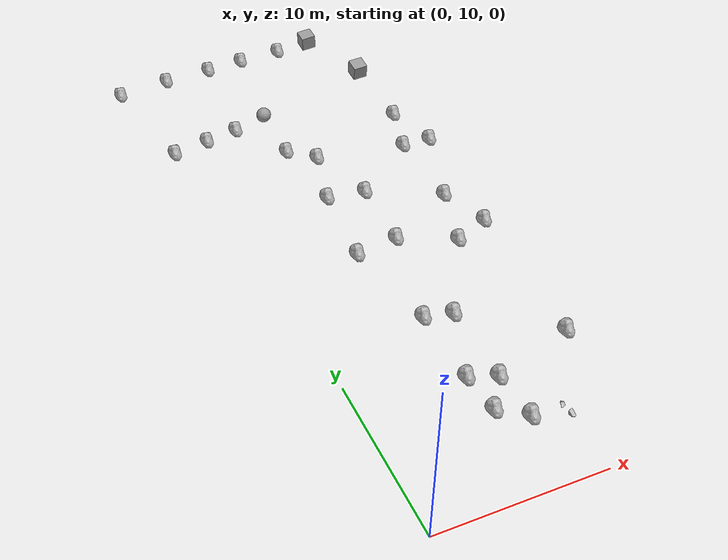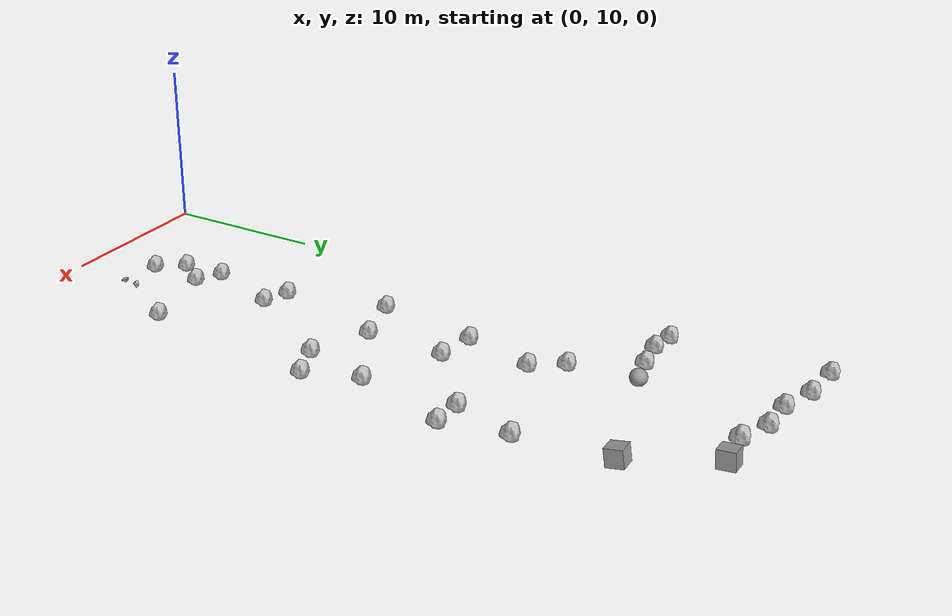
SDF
<sdf version="1.6">
 <world name="default">
  <physics name="default_physics" default="0" type="ode">
   <max_step_size>0.001</max_step_size>
   <real_time_factor>1</real_time_factor>
   <real_time_update_rate>1000</real_time_update_rate>
  </physics>
  <scene>
   <ambient>0 0 0 1</ambient>
   <background>0 0 0 1</background>
   <grid>0</grid>
   <sky><time>13</time><sunrise>12</sunrise><sunset>12</sunset><clouds><humidity>0</humidity></clouds></sky>
   <shadows>1</shadows>
  </scene>
  <light name="sun" type="directional">
   <pose>0 0 12 -0.31 0.39 -1.73</pose>
   <diffuse>0.8 0.8 0.8 1</diffuse>
   <specular>0.5 0.5 0.5 1</specular>
   <attenuation>
    <range>1000</range>
    <constant>0.9</constant>
    <linear>0.01</linear>
    <quadratic>0.001</quadratic>
   </attenuation>
   <direction>-0.5 0.1 -0.4</direction>
  </light>
  <light name="sun7" type="directional">
   <pose>-1 -1 10 0 -0 0</pose>
   <diffuse>0.9 0.9 0.9 1</diffuse>
   <specular>0.5 0.5 0.5 1</specular>
   <attenuation><range>100</range><constant>1</constant></attenuation>
   <direction>-1 1 -1</direction>
  </light>
  <gravity>0 0 -9.8</gravity>
  <magnetic_field>6e-06 2.3e-05 -4.2e-05</magnetic_field>
  <atmosphere type="adiabatic"/>
  <spherical_coordinates>
   <surface_model>EARTH_WGS84</surface_model>
   <latitude_deg>0</latitude_deg>
   <longitude_deg>0</longitude_deg>
   <elevation>0</elevation>
   <heading_deg>0</heading_deg>
  </spherical_coordinates>
  <model name="stone1">
   <pose>12.9206 18.4882 0 0 -0 0</pose>
   <static>1</static>
   <link name="stone1_link">
    <collision name="stone1_collision">
     <geometry><mesh><uri>model://stone1/meshes/s1.dae</uri><scale>1 1 1</scale></mesh></geometry>
    </collision>
    <visual name="stone1_visual">
     <geometry><mesh><uri>model://stone1/meshes/s1.dae</uri><scale>1 1 1</scale></mesh></geometry>
     <material><shader type="pixel"><normal_map>__default__</normal_map></shader><lighting>0</lighting></material>
    </visual>
   </link>
  </model>
  <model name="stone1_0">
   <pose>13.6667 29.0145 -0.436939 0 -0 0</pose>
   <static>1</static>
   <link name="stone1_link">
    <collision name="stone1_collision">
     <geometry><mesh><uri>model://stone1/meshes/s1.dae</uri><scale>1 1 1</scale></mesh></geometry>
    </collision>
    <visual name="stone1_visual">
     <geometry><mesh><uri>model://stone1/meshes/s1.dae</uri><scale>1 1 1</scale></mesh></geometry>
     <material><shader type="pixel"><normal_map>__default__</normal_map></shader><lighting>0</lighting></material>
    </visual>
   </link>
  </model>
  <model name="stone1_1">
   <pose>12.5622 32.2313 -0.440519 0 -0 0</pose>
   <static>1</static>
   <link name="stone1_link">
    <collision name="stone1_collision">
     <geometry><mesh><uri>model://stone1/meshes/s1.dae</uri><scale>1 1 1</scale></mesh></geometry>
    </collision>
    <visual name="stone1_visual">
     <geometry><mesh><uri>model://stone1/meshes/s1.dae</uri><scale>1 1 1</scale></mesh></geometry>
     <material><shader type="pixel"><normal_map>__default__</normal_map></shader><lighting>0</lighting></material>
    </visual>
   </link>
  </model>
  <model name="stone1_2">
   <pose>11.3753 28.0758 -0.497412 0 -0 0</pose>
   <static>1</static>
   <link name="stone1_link">
    <collision name="stone1_collision">
     <geometry><mesh><uri>model://stone1/meshes/s1.dae</uri><scale>1 1 1</scale></mesh></geometry>
    </collision>
    <visual name="stone1_visual">
     <geometry><mesh><uri>model://stone1/meshes/s1.dae</uri><scale>1 1 1</scale></mesh></geometry>
     <material><shader type="pixel"><normal_map>__default__</normal_map></shader><lighting>0</lighting></material>
    </visual>
   </link>
  </model>
  <model name="stone1_3">
   <pose>7.96425 13.9227 0 0 -0 0</pose>
   <static>1</static>
   <link name="stone1_link">
    <collision name="stone1_collision">
     <geometry><mesh><uri>model://stone1/meshes/s1.dae</uri><scale>1 1 1</scale></mesh></geometry>
    </collision>
    <visual name="stone1_visual">
     <geometry><mesh><uri>model://stone1/meshes/s1.dae</uri><scale>1 1 1</scale></mesh></geometry>
     <material><shader type="pixel"><normal_map>__default__</normal_map></shader><lighting>0</lighting></material>
    </visual>
   </link>
  </model>
  <model name="stone1_4">
   <pose>7.89981 17.0803 -0.180901 0 -0 0</pose>
   <static>1</static>
   <link name="stone1_link">
    <collision name="stone1_collision">
     <geometry><mesh><uri>model://stone1/meshes/s1.dae</uri><scale>1 1 1</scale></mesh></geometry>
    </collision>
    <visual name="stone1_visual">
     <geometry><mesh><uri>model://stone1/meshes/s1.dae</uri><scale>1 1 1</scale></mesh></geometry>
     <material><shader type="pixel"><normal_map>__default__</normal_map></shader><lighting>0</lighting></material>
    </visual>
   </link>
  </model>
  <model name="stone1_5">
   <pose>6.31821 17.7982 -0.279202 0 -0 0</pose>
   <static>1</static>
   <link name="stone1_link">
    <collision name="stone1_collision">
     <geometry><mesh><uri>model://stone1/meshes/s1.dae</uri><scale>1 1 1</scale></mesh></geometry>
    </collision>
    <visual name="stone1_visual">
     <geometry><mesh><uri>model://stone1/meshes/s1.dae</uri><scale>1 1 1</scale></mesh></geometry>
     <material><shader type="pixel"><normal_map>__default__</normal_map></shader><lighting>0</lighting></material>
    </visual>
   </link>
  </model>
  <model name="stone1_6">
   <pose>6.53041 15.2027 -0.219735 0 -0 0</pose>
   <static>1</static>
   <link name="stone1_link">
    <collision name="stone1_collision">
     <geometry><mesh><uri>model://stone1/meshes/s1.dae</uri><scale>1 1 1</scale></mesh></geometry>
    </collision>
    <visual name="stone1_visual">
     <geometry><mesh><uri>model://stone1/meshes/s1.dae</uri><scale>1 1 1</scale></mesh></geometry>
     <material><shader type="pixel"><normal_map>__default__</normal_map></shader><lighting>0</lighting></material>
    </visual>
   </link>
  </model>
  <model name="stone1_7">
   <pose>6.29324 22.8087 -0.362838 0 -0 0</pose>
   <static>1</static>
   <link name="stone1_link">
    <collision name="stone1_collision">
     <geometry><mesh><uri>model://stone1/meshes/s1.dae</uri><scale>1 1 1</scale></mesh></geometry>
    </collision>
    <visual name="stone1_visual">
     <geometry><mesh><uri>model://stone1/meshes/s1.dae</uri><scale>1 1 1</scale></mesh></geometry>
     <material><shader type="pixel"><normal_map>__default__</normal_map></shader><lighting>0</lighting></material>
    </visual>
   </link>
  </model>
  <model name="stone1_8">
   <pose>5.05039 29.05 -0.271286 0 -0 0</pose>
   <static>1</static>
   <link name="stone1_link">
    <collision name="stone1_collision">
     <geometry><mesh><uri>model://stone1/meshes/s1.dae</uri><scale>1 1 1</scale></mesh></geometry>
    </collision>
    <visual name="stone1_visual">
     <geometry><mesh><uri>model://stone1/meshes/s1.dae</uri><scale>1 1 1</scale></mesh></geometry>
     <material><shader type="pixel"><normal_map>__default__</normal_map></shader><lighting>0</lighting></material>
    </visual>
   </link>
  </model>
  <model name="stone1_9">
   <pose>7.93451 29.6751 -0.490421 0 -0 0</pose>
   <static>1</static>
   <link name="stone1_link">
    <collision name="stone1_collision">
     <geometry><mesh><uri>model://stone1/meshes/s1.dae</uri><scale>1 1 1</scale></mesh></geometry>
    </collision>
    <visual name="stone1_visual">
     <geometry><mesh><uri>model://stone1/meshes/s1.dae</uri><scale>1 1 1</scale></mesh></geometry>
     <material><shader type="pixel"><normal_map>__default__</normal_map></shader><lighting>0</lighting></material>
    </visual>
   </link>
  </model>
  <model name="stone1_10">
   <pose>7.96545 22.314 -0.275168 0 -0 0</pose>
   <static>1</static>
   <link name="stone1_link">
    <collision name="stone1_collision">
     <geometry><mesh><uri>model://stone1/meshes/s1.dae</uri><scale>1 1 1</scale></mesh></geometry>
    </collision>
    <visual name="stone1_visual">
     <geometry><mesh><uri>model://stone1/meshes/s1.dae</uri><scale>1 1 1</scale></mesh></geometry>
     <material><shader type="pixel"><normal_map>__default__</normal_map></shader><lighting>0</lighting></material>
    </visual>
   </link>
  </model>
  <model name="stone1_11">
   <pose>5.63715 34.9447 -0.506085 0 -0 0</pose>
   <static>1</static>
   <link name="stone1_link">
    <collision name="stone1_collision">
     <geometry><mesh><uri>model://stone1/meshes/s1.dae</uri><scale>1 1 1</scale></mesh></geometry>
    </collision>
    <visual name="stone1_visual">
     <geometry><mesh><uri>model://stone1/meshes/s1.dae</uri><scale>1 1 1</scale></mesh></geometry>
     <material><shader type="pixel"><normal_map>__default__</normal_map></shader><lighting>0</lighting></material>
    </visual>
   </link>
  </model>
  <model name="stone1_12">
   <pose>8.08632 34.5392 -0.474132 0 -0 0</pose>
   <static>1</static>
   <link name="stone1_link">
    <collision name="stone1_collision">
     <geometry><mesh><uri>model://stone1/meshes/s1.dae</uri><scale>1 1 1</scale></mesh></geometry>
    </collision>
    <visual name="stone1_visual">
     <geometry><mesh><uri>model://stone1/meshes/s1.dae</uri><scale>1 1 1</scale></mesh></geometry>
     <material><shader type="pixel"><normal_map>__default__</normal_map></shader><lighting>0</lighting></material>
    </visual>
   </link>
  </model>
  <model name="stone1_13">
   <pose>14.396 37.9045 -0.379532 0 -0 0</pose>
   <static>1</static>
   <link name="stone1_link">
    <collision name="stone1_collision">
     <geometry><mesh><uri>model://stone1/meshes/s1.dae</uri><scale>1 1 1</scale></mesh></geometry>
    </collision>
    <visual name="stone1_visual">
     <geometry><mesh><uri>model://stone1/meshes/s1.dae</uri><scale>1 1 1</scale></mesh></geometry>
     <material><shader type="pixel"><normal_map>__default__</normal_map></shader><lighting>0</lighting></material>
    </visual>
   </link>
  </model>
  <model name="stone1_14">
   <pose>12.4861 37.9806 -0.406533 0 -0 0</pose>
   <static>1</static>
   <link name="stone1_link">
    <collision name="stone1_collision">
     <geometry><mesh><uri>model://stone1/meshes/s1.dae</uri><scale>1 1 1</scale></mesh></geometry>
    </collision>
    <visual name="stone1_visual">
     <geometry><mesh><uri>model://stone1/meshes/s1.dae</uri><scale>1 1 1</scale></mesh></geometry>
     <material><shader type="pixel"><normal_map>__default__</normal_map></shader><lighting>0</lighting></material>
    </visual>
   </link>
  </model>
  <model name="stone1_15">
   <pose>6.70023 39.1269 -0.537971 0 -0 0</pose>
   <static>1</static>
   <link name="stone1_link">
    <collision name="stone1_collision">
     <geometry><mesh><uri>model://stone1/meshes/s1.dae</uri><scale>1 1 1</scale></mesh></geometry>
    </collision>
    <visual name="stone1_visual">
     <geometry><mesh><uri>model://stone1/meshes/s1.dae</uri><scale>1 1 1</scale></mesh></geometry>
     <material><shader type="pixel"><normal_map>__default__</normal_map></shader><lighting>0</lighting></material>
    </visual>
   </link>
  </model>
  <model name="stone1_16">
   <pose>13.4977 41.5845 -0.474996 0 -0 0</pose>
   <static>1</static>
   <link name="stone1_link">
    <collision name="stone1_collision">
     <geometry><mesh><uri>model://stone1/meshes/s1.dae</uri><scale>1 1 1</scale></mesh></geometry>
    </collision>
    <visual name="stone1_visual">
     <geometry><mesh><uri>model://stone1/meshes/s1.dae</uri><scale>1 1 1</scale></mesh></geometry>
     <material><shader type="pixel"><normal_map>__default__</normal_map></shader><lighting>0</lighting></material>
    </visual>
   </link>
  </model>
  <model name="stone1_17">
   <pose>5.18283 40.8011 -0.733293 0 -0 0</pose>
   <static>1</static>
   <link name="stone1_link">
    <collision name="stone1_collision">
     <geometry><mesh><uri>model://stone1/meshes/s1.dae</uri><scale>1 1 1</scale></mesh></geometry>
    </collision>
    <visual name="stone1_visual">
     <geometry><mesh><uri>model://stone1/meshes/s1.dae</uri><scale>1 1 1</scale></mesh></geometry>
     <material><shader type="pixel"><normal_map>__default__</normal_map></shader><lighting>0</lighting></material>
    </visual>
   </link>
  </model>
  <model name="unit_sphere_0">
   <pose>5.23158 45.3515 -0.112712 0 -0 0</pose>
   <link name="link">
    <inertial>
     <mass>1</mass>
     <inertia><ixx>0.1</ixx><ixy>0</ixy><ixz>0</ixz><iyy>0.1</iyy><iyz>0</iyz><izz>0.1</izz></inertia>
    </inertial>
    <collision name="collision"><geometry><sphere><radius>0.5</radius></sphere></geometry></collision>
    <visual name="visual">
     <geometry><sphere><radius>0.5</radius></sphere></geometry>
     <material>
      <script><name>Gazebo/Grey</name><uri>file://media/materials/scripts/gazebo.material</uri></script>
     </material>
    </visual>
   </link>
  </model>
  <model name="unit_box_0">
   <pose>13.3696 47.5586 0.319321 0.179607 -0.050335 0.029828</pose>
   <link name="link">
    <inertial>
     <mass>1</mass>
     <inertia>
      <ixx>0.166667</ixx>
      <ixy>0</ixy>
      <ixz>0</ixz>
      <iyy>0.166667</iyy>
      <iyz>0</iyz>
      <izz>0.166667</izz>
     </inertia>
    </inertial>
    <collision name="collision"><geometry><box><size>1 1 1</size></box></geometry></collision>
    <visual name="visual">
     <geometry><box><size>1 1 1</size></box></geometry>
     <material>
      <script><name>Gazebo/Grey</name><uri>file://media/materials/scripts/gazebo.material</uri></script>
     </material>
    </visual>
   </link>
  </model>
  <model name="unit_box_1">
   <pose>11.3203 52.3067 0.601739 0.094816 -0.095626 0.001978</pose>
   <link name="link">
    <inertial>
     <mass>1</mass>
     <inertia>
      <ixx>0.166667</ixx>
      <ixy>0</ixy>
      <ixz>0</ixz>
      <iyy>0.166667</iyy>
      <iyz>0</iyz>
      <izz>0.166667</izz>
     </inertia>
    </inertial>
    <collision name="collision"><geometry><box><size>1 1 1</size></box></geometry></collision>
    <visual name="visual">
     <geometry><box><size>1 1 1</size></box></geometry>
     <material>
      <script><name>Gazebo/Grey</name><uri>file://media/materials/scripts/gazebo.material</uri></script>
     </material>
    </visual>
   </link>
  </model>
  <model name="stone1_18">
   <pose>8.82122 51.6883 0 0 -0 0</pose>
   <static>1</static>
   <link name="stone1_link">
    <collision name="stone1_collision">
     <geometry><mesh><uri>model://stone1/meshes/s1.dae</uri><scale>1 1 1</scale></mesh></geometry>
    </collision>
    <visual name="stone1_visual">
     <geometry><mesh><uri>model://stone1/meshes/s1.dae</uri><scale>1 1 1</scale></mesh></geometry>
     <material><shader type="pixel"><normal_map>__default__</normal_map></shader><lighting>0</lighting></material>
    </visual>
   </link>
  </model>
  <model name="stone1_19">
   <pose>6.12242 52.3073 -0.530115 0 -0 0</pose>
   <static>1</static>
   <link name="stone1_link">
    <collision name="stone1_collision">
     <geometry><mesh><uri>model://stone1/meshes/s1.dae</uri><scale>1 1 1</scale></mesh></geometry>
    </collision>
    <visual name="stone1_visual">
     <geometry><mesh><uri>model://stone1/meshes/s1.dae</uri><scale>1 1 1</scale></mesh></geometry>
     <material><shader type="pixel"><normal_map>__default__</normal_map></shader><lighting>0</lighting></material>
    </visual>
   </link>
  </model>
  <model name="stone1_20">
   <pose>2.88531 44.4376 -0.728864 0 -0 0</pose>
   <static>1</static>
   <link name="stone1_link">
    <collision name="stone1_collision">
     <geometry><mesh><uri>model://stone1/meshes/s1.dae</uri><scale>1 1 1</scale></mesh></geometry>
    </collision>
    <visual name="stone1_visual">
     <geometry><mesh><uri>model://stone1/meshes/s1.dae</uri><scale>1 1 1</scale></mesh></geometry>
     <material><shader type="pixel"><normal_map>__default__</normal_map></shader><lighting>0</lighting></material>
    </visual>
   </link>
  </model>
  <model name="stone1_21">
   <pose>0.711754 44.1397 -0.833818 0 -0 0</pose>
   <static>1</static>
   <link name="stone1_link">
    <collision name="stone1_collision">
     <geometry><mesh><uri>model://stone1/meshes/s1.dae</uri><scale>1 1 1</scale></mesh></geometry>
    </collision>
    <visual name="stone1_visual">
     <geometry><mesh><uri>model://stone1/meshes/s1.dae</uri><scale>1 1 1</scale></mesh></geometry>
     <material><shader type="pixel"><normal_map>__default__</normal_map></shader><lighting>0</lighting></material>
    </visual>
   </link>
  </model>
  <model name="stone1_22">
   <pose>3.60612 52.3716 -0.733238 0 -0 0</pose>
   <static>1</static>
   <link name="stone1_link">
    <collision name="stone1_collision">
     <geometry><mesh><uri>model://stone1/meshes/s1.dae</uri><scale>1 1 1</scale></mesh></geometry>
    </collision>
    <visual name="stone1_visual">
     <geometry><mesh><uri>model://stone1/meshes/s1.dae</uri><scale>1 1 1</scale></mesh></geometry>
     <material><shader type="pixel"><normal_map>__default__</normal_map></shader><lighting>0</lighting></material>
    </visual>
   </link>
  </model>
  <model name="stone1_23">
   <pose>0.549304 52.9767 -1.27239 0 -0 0</pose>
   <static>1</static>
   <link name="stone1_link">
    <collision name="stone1_collision">
     <geometry><mesh><uri>model://stone1/meshes/s1.dae</uri><scale>1 1 1</scale></mesh></geometry>
    </collision>
    <visual name="stone1_visual">
     <geometry><mesh><uri>model://stone1/meshes/s1.dae</uri><scale>1 1 1</scale></mesh></geometry>
     <material><shader type="pixel"><normal_map>__default__</normal_map></shader><lighting>0</lighting></material>
    </visual>
   </link>
  </model>
  <model name="stone1_24">
   <pose>-1.57502 44.1893 -1.24799 0 -0 0</pose>
   <static>1</static>
   <link name="stone1_link">
    <collision name="stone1_collision">
     <geometry><mesh><uri>model://stone1/meshes/s1.dae</uri><scale>1 1 1</scale></mesh></geometry>
    </collision>
    <visual name="stone1_visual">
     <geometry><mesh><uri>model://stone1/meshes/s1.dae</uri><scale>1 1 1</scale></mesh></geometry>
     <material><shader type="pixel"><normal_map>__default__</normal_map></shader><lighting>0</lighting></material>
    </visual>
   </link>
  </model>
  <model name="stone1_25">
   <pose>-2.8968 53.1465 -1.72334 0 -0 0</pose>
   <static>1</static>
   <link name="stone1_link">
    <collision name="stone1_collision">
     <geometry><mesh><uri>model://stone1/meshes/s1.dae</uri><scale>1 1 1</scale></mesh></geometry>
    </collision>
    <visual name="stone1_visual">
     <geometry><mesh><uri>model://stone1/meshes/s1.dae</uri><scale>1 1 1</scale></mesh></geometry>
     <material><shader type="pixel"><normal_map>__default__</normal_map></shader><lighting>0</lighting></material>
    </visual>
   </link>
  </model>
  <model name="stone2">
   <pose>10.2236 13.7318 -0.055771 0.237319 -0 2.519</pose>
   <static>1</static>
   <link name="stone2_link">
    <collision name="stone2_collision">
     <geometry><mesh><uri>model://stone2/meshes/st1.dae</uri><scale>1 1 1</scale></mesh></geometry>
    </collision>
    <visual name="stone1_visual">
     <geometry><mesh><uri>model://stone2/meshes/st1.dae</uri><scale>1 1 1</scale></mesh></geometry>
     <material><shader type="pixel"><normal_map>__default__</normal_map></shader><lighting>0</lighting></material>
    </visual>
   </link>
  </model>
  <model name="stone2_0">
   <pose>10.1696 14.4855 -0.142843 3.14159 -1.53114 3.14159</pose>
   <static>1</static>
   <link name="stone2_link">
    <collision name="stone2_collision">
     <geometry><mesh><uri>model://stone2/meshes/st1.dae</uri><scale>1 1 1</scale></mesh></geometry>
    </collision>
    <visual name="stone1_visual">
     <geometry><mesh><uri>model://stone2/meshes/st1.dae</uri><scale>1 1 1</scale></mesh></geometry>
     <material><shader type="pixel"><normal_map>__default__</normal_map></shader><lighting>0</lighting></material>
    </visual>
   </link>
  </model>
 </world>
</sdf>
